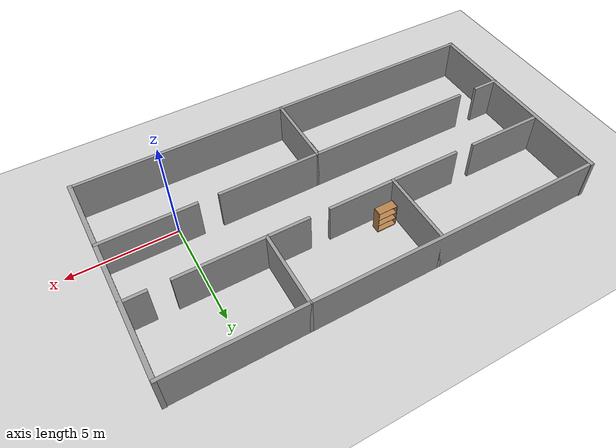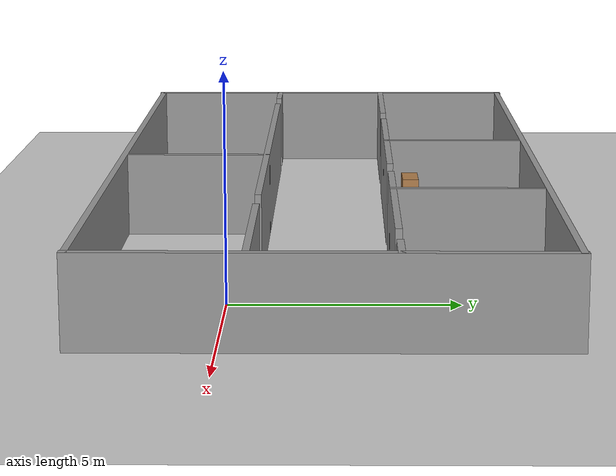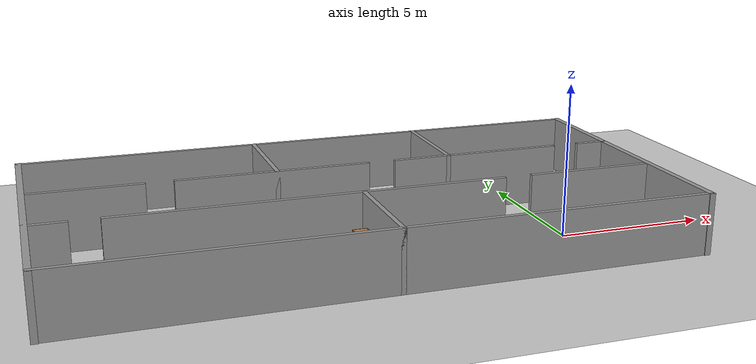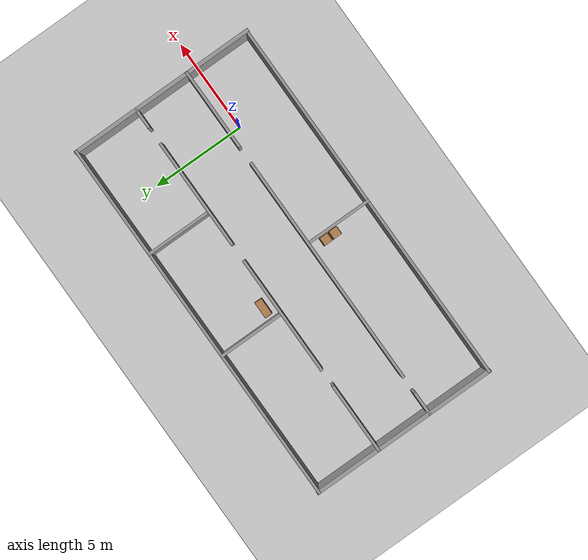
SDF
<sdf version="1.6">
 <world name="default">
  <model name="ground_plane">
   <static>1</static>
   <link name="link">
    <collision name="collision">
     <geometry><plane><normal>0 0 1</normal><size>100 100</size></plane></geometry>
     <surface>
      <contact><collide_bitmask>65535</collide_bitmask></contact>
      <friction><ode><mu>100</mu><mu2>50</mu2></ode></friction>
     </surface>
    </collision>
    <visual name="visual">
     <cast_shadows>0</cast_shadows>
     <geometry><plane><normal>0 0 1</normal><size>100 100</size></plane></geometry>
     <material>
      <script><uri>file://media/materials/scripts/gazebo.material</uri><name>Gazebo/Grey</name></script>
     </material>
    </visual>
   </link>
  </model>
  <model name="indoor1">
   <pose>-6.60599 2.09849 0 0 -0 0</pose>
   <link name="Wall_17">
    <pose>0 -1.5 0 0 -0 0</pose>
    <visual name="Wall_17_Visual_0">
     <pose>-9.43386 0 1 0 -0 0</pose>
     <geometry><box><size>1.28227 0.15 2</size></box></geometry>
     <material>
      <script><uri>file://media/materials/scripts/gazebo.material</uri><name>Gazebo/Grey</name></script>
      <ambient>1 1 1 1</ambient>
     </material>
     <meta><layer>0</layer></meta>
    </visual>
    <collision name="Wall_17_Collision_0">
     <geometry><box><size>1.28227 0.15 2</size></box></geometry>
     <pose>-9.43386 0 1 0 -0 0</pose>
    </collision>
    <visual name="Wall_17_Visual_1">
     <pose>-1.56699 0 1 0 -0 0</pose>
     <geometry><box><size>12.6515 0.15 2</size></box></geometry>
     <material>
      <script><uri>file://media/materials/scripts/gazebo.material</uri><name>Gazebo/Grey</name></script>
      <ambient>1 1 1 1</ambient>
     </material>
     <meta><layer>0</layer></meta>
    </visual>
    <collision name="Wall_17_Collision_1">
     <geometry><box><size>12.6515 0.15 2</size></box></geometry>
     <pose>-1.56699 0 1 0 -0 0</pose>
    </collision>
    <visual name="Wall_17_Visual_2">
     <pose>7.86687 0 1 0 -0 0</pose>
     <geometry><box><size>4.41625 0.15 2</size></box></geometry>
     <material>
      <script><uri>file://media/materials/scripts/gazebo.material</uri><name>Gazebo/Grey</name></script>
      <ambient>1 1 1 1</ambient>
     </material>
     <meta><layer>0</layer></meta>
    </visual>
    <collision name="Wall_17_Collision_2">
     <geometry><box><size>4.41625 0.15 2</size></box></geometry>
     <pose>7.86687 0 1 0 -0 0</pose>
    </collision>
   </link>
   <link name="Wall_19">
    <pose>0 1.5 0 0 -0 0</pose>
    <visual name="Wall_19_Visual_0">
     <pose>-8.16437 0 1 0 -0 0</pose>
     <geometry><box><size>3.82126 0.15 2</size></box></geometry>
     <material>
      <script><uri>file://media/materials/scripts/gazebo.material</uri><name>Gazebo/Grey</name></script>
      <ambient>1 1 1 1</ambient>
     </material>
     <meta><layer>0</layer></meta>
    </visual>
    <collision name="Wall_19_Collision_0">
     <geometry><box><size>3.82126 0.15 2</size></box></geometry>
     <pose>-8.16437 0 1 0 -0 0</pose>
    </collision>
    <visual name="Wall_19_Visual_1">
     <pose>-2.10232 0 1 0 -0 0</pose>
     <geometry><box><size>6.50284 0.15 2</size></box></geometry>
     <material>
      <script><uri>file://media/materials/scripts/gazebo.material</uri><name>Gazebo/Grey</name></script>
      <ambient>1 1 1 1</ambient>
     </material>
     <meta><layer>0</layer></meta>
    </visual>
    <collision name="Wall_19_Collision_1">
     <geometry><box><size>6.50284 0.15 2</size></box></geometry>
     <pose>-2.10232 0 1 0 -0 0</pose>
    </collision>
    <visual name="Wall_19_Visual_2">
     <pose>5.0405 0 1 0 -0 0</pose>
     <geometry><box><size>5.9828 0.15 2</size></box></geometry>
     <material>
      <script><uri>file://media/materials/scripts/gazebo.material</uri><name>Gazebo/Grey</name></script>
      <ambient>1 1 1 1</ambient>
     </material>
     <meta><layer>0</layer></meta>
    </visual>
    <collision name="Wall_19_Collision_2">
     <geometry><box><size>5.9828 0.15 2</size></box></geometry>
     <pose>5.0405 0 1 0 -0 0</pose>
    </collision>
    <visual name="Wall_19_Visual_3">
     <pose>9.50345 0 1 0 -0 0</pose>
     <geometry><box><size>1.1431 0.15 2</size></box></geometry>
     <material>
      <script><uri>file://media/materials/scripts/gazebo.material</uri><name>Gazebo/Grey</name></script>
      <ambient>1 1 1 1</ambient>
     </material>
     <meta><layer>0</layer></meta>
    </visual>
    <collision name="Wall_19_Collision_3">
     <geometry><box><size>1.1431 0.15 2</size></box></geometry>
     <pose>9.50345 0 1 0 -0 0</pose>
    </collision>
   </link>
   <link name="Wall_21">
    <collision name="Wall_21_Collision">
     <geometry><box><size>3.65 0.15 2</size></box></geometry>
     <pose>0 0 1 0 -0 0</pose>
    </collision>
    <visual name="Wall_21_Visual">
     <pose>0 0 1 0 -0 0</pose>
     <geometry><box><size>3.65 0.15 2</size></box></geometry>
     <material>
      <script><uri>file://media/materials/scripts/gazebo.material</uri><name>Gazebo/Grey</name></script>
      <ambient>1 1 1 1</ambient>
     </material>
     <meta><layer>0</layer></meta>
    </visual>
    <pose>-2 3.25 0 0 -0 1.5708</pose>
   </link>
   <link name="Wall_23">
    <collision name="Wall_23_Collision">
     <geometry><box><size>3.65 0.15 2</size></box></geometry>
     <pose>0 0 1 0 -0 0</pose>
    </collision>
    <visual name="Wall_23_Visual">
     <pose>0 0 1 0 -0 0</pose>
     <geometry><box><size>3.65 0.15 2</size></box></geometry>
     <material>
      <script><uri>file://media/materials/scripts/gazebo.material</uri><name>Gazebo/Grey</name></script>
      <ambient>1 1 1 1</ambient>
     </material>
     <meta><layer>0</layer></meta>
    </visual>
    <pose>4 3.25 0 0 -0 1.5708</pose>
   </link>
   <link name="Wall_25">
    <collision name="Wall_25_Collision">
     <geometry><box><size>3.65 0.15 2</size></box></geometry>
     <pose>0 0 1 0 -0 0</pose>
    </collision>
    <visual name="Wall_25_Visual">
     <pose>0 0 1 0 -0 0</pose>
     <geometry><box><size>3.65 0.15 2</size></box></geometry>
     <material>
      <script><uri>file://media/materials/scripts/gazebo.material</uri><name>Gazebo/Grey</name></script>
      <ambient>1 1 1 1</ambient>
     </material>
     <meta><layer>0</layer></meta>
    </visual>
    <pose>0 -3.25 0 0 -0 1.5708</pose>
   </link>
   <link name="Wall_5">
    <collision name="Wall_5_Collision">
     <geometry><box><size>20.15 0.15 2</size></box></geometry>
     <pose>0 0 1 0 -0 0</pose>
    </collision>
    <visual name="Wall_5_Visual">
     <pose>0 0 1 0 -0 0</pose>
     <geometry><box><size>20.15 0.15 2</size></box></geometry>
     <material>
      <script><uri>file://media/materials/scripts/gazebo.material</uri><name>Gazebo/Grey</name></script>
      <ambient>1 1 1 1</ambient>
     </material>
     <meta><layer>0</layer></meta>
    </visual>
    <pose>0 5 0 0 -0 0</pose>
   </link>
   <link name="Wall_6">
    <collision name="Wall_6_Collision">
     <geometry><box><size>10.2 0.2 2</size></box></geometry>
     <pose>0 0 1 0 -0 0</pose>
    </collision>
    <visual name="Wall_6_Visual">
     <pose>0 0 1 0 -0 0</pose>
     <geometry><box><size>10.2 0.2 2</size></box></geometry>
     <material>
      <script><uri>file://media/materials/scripts/gazebo.material</uri><name>Gazebo/Grey</name></script>
      <ambient>1 1 1 1</ambient>
     </material>
     <meta><layer>0</layer></meta>
    </visual>
    <pose>10 0 0 0 0 -1.5708</pose>
   </link>
   <link name="Wall_7">
    <collision name="Wall_7_Collision">
     <geometry><box><size>20.15 0.15 2</size></box></geometry>
     <pose>0 0 1 0 -0 0</pose>
    </collision>
    <visual name="Wall_7_Visual">
     <pose>0 0 1 0 -0 0</pose>
     <geometry><box><size>20.15 0.15 2</size></box></geometry>
     <material>
      <script><uri>file://media/materials/scripts/gazebo.material</uri><name>Gazebo/Grey</name></script>
      <ambient>1 1 1 1</ambient>
     </material>
     <meta><layer>0</layer></meta>
    </visual>
    <pose>0 -5 0 0 -0 3.14159</pose>
   </link>
   <link name="Wall_8">
    <collision name="Wall_8_Collision">
     <geometry><box><size>10.2 0.2 2</size></box></geometry>
     <pose>0 0 1 0 -0 0</pose>
    </collision>
    <visual name="Wall_8_Visual">
     <pose>0 0 1 0 -0 0</pose>
     <geometry><box><size>10.2 0.2 2</size></box></geometry>
     <material>
      <script><uri>file://media/materials/scripts/gazebo.material</uri><name>Gazebo/Grey</name></script>
      <ambient>1 1 1 1</ambient>
     </material>
     <meta><layer>0</layer></meta>
    </visual>
    <pose>-10 0 0 0 -0 1.5708</pose>
   </link>
   <static>1</static>
  </model>
  <model name="bookshelf_clone_clone">
   <static>1</static>
   <link name="link">
    <inertial><mass>1</mass></inertial>
    <collision name="back">
     <pose>0 0.005 0.6 0 -0 0</pose>
     <geometry><box><size>0.9 0.01 1.2</size></box></geometry>
    </collision>
    <visual name="visual1">
     <pose>0 0.005 0.6 0 -0 0</pose>
     <geometry><box><size>0.9 0.01 1.2</size></box></geometry>
     <material>
      <script><uri>file://media/materials/scripts/gazebo.material</uri><name>Gazebo/Wood</name></script>
     </material>
    </visual>
    <collision name="left_side">
     <pose>0.45 -0.195 0.6 0 -0 0</pose>
     <geometry><box><size>0.02 0.4 1.2</size></box></geometry>
    </collision>
    <visual name="visual2">
     <pose>0.45 -0.195 0.6 0 -0 0</pose>
     <geometry><box><size>0.02 0.4 1.2</size></box></geometry>
     <material>
      <script><uri>file://media/materials/scripts/gazebo.material</uri><name>Gazebo/Wood</name></script>
     </material>
    </visual>
    <collision name="right_side">
     <pose>-0.45 -0.195 0.6 0 -0 0</pose>
     <geometry><box><size>0.02 0.4 1.2</size></box></geometry>
    </collision>
    <visual name="visual3">
     <pose>-0.45 -0.195 0.6 0 -0 0</pose>
     <geometry><box><size>0.02 0.4 1.2</size></box></geometry>
     <material>
      <script><uri>file://media/materials/scripts/gazebo.material</uri><name>Gazebo/Wood</name></script>
     </material>
    </visual>
    <collision name="bottom">
     <pose>0 -0.195 0.03 0 -0 0</pose>
     <geometry><box><size>0.88 0.4 0.06</size></box></geometry>
    </collision>
    <visual name="visual4">
     <pose>0 -0.195 0.03 0 -0 0</pose>
     <geometry><box><size>0.88 0.4 0.06</size></box></geometry>
     <material>
      <script><uri>file://media/materials/scripts/gazebo.material</uri><name>Gazebo/Wood</name></script>
     </material>
    </visual>
    <collision name="top">
     <pose>0 -0.195 1.19 0 -0 0</pose>
     <geometry><box><size>0.88 0.4 0.02</size></box></geometry>
    </collision>
    <visual name="visual5">
     <pose>0 -0.195 1.19 0 -0 0</pose>
     <geometry><box><size>0.88 0.4 0.02</size></box></geometry>
     <material>
      <script><uri>file://media/materials/scripts/gazebo.material</uri><name>Gazebo/Wood</name></script>
     </material>
    </visual>
    <collision name="low_shelf">
     <pose>0 -0.195 0.43 0 -0 0</pose>
     <geometry><box><size>0.88 0.4 0.02</size></box></geometry>
    </collision>
    <visual name="visual6">
     <pose>0 -0.195 0.43 0 -0 0</pose>
     <geometry><box><size>0.88 0.4 0.02</size></box></geometry>
     <material>
      <script><uri>file://media/materials/scripts/gazebo.material</uri><name>Gazebo/Wood</name></script>
     </material>
    </visual>
    <collision name="high_shelf">
     <pose>0 -0.195 0.8 0 -0 0</pose>
     <geometry><box><size>0.88 0.4 0.02</size></box></geometry>
    </collision>
    <visual name="visual7">
     <pose>0 -0.195 0.8 0 -0 0</pose>
     <geometry><box><size>0.88 0.4 0.02</size></box></geometry>
     <material>
      <script><uri>file://media/materials/scripts/gazebo.material</uri><name>Gazebo/Wood</name></script>
     </material>
    </visual>
   </link>
   <pose>-7.90459 3.98313 0 0 0 -3.14159</pose>
  </model>
  <model name="cabinet_clone_clone_0">
   <static>1</static>
   <link name="cabinet_bottom_plate">
    <inertial>
     <pose>0 0 -1 0 -0 0</pose>
     <inertia><ixx>2.05</ixx><ixy>0</ixy><ixz>0</ixz><iyy>2.05</iyy><iyz>0</iyz><izz>2.05</izz></inertia>
     <mass>25</mass>
    </inertial>
    <collision name="cabinet_bottom_plate_geom">
     <pose>0 0 0.01 0 -0 0</pose>
     <geometry><box><size>0.45 0.45 0.02</size></box></geometry>
    </collision>
    <visual name="cabinet_bottom_plate_geom_visual">
     <pose>0 0 0.01 0 -0 0</pose>
     <geometry><box><size>0.45 0.45 0.02</size></box></geometry>
     <material>
      <script><uri>file://media/materials/scripts/gazebo.material</uri><name>Gazebo/Wood</name></script>
     </material>
    </visual>
    <collision name="cabinet_bottom_plate_geom_cabinet_back_plate">
     <pose>0.235 0 0.51 0 -0 0</pose>
     <geometry><box><size>0.02 0.45 1.02</size></box></geometry>
    </collision>
    <visual name="cabinet_bottom_plate_geom_cabinet_back_plate_visual">
     <pose>0.235 0 0.51 0 -0 0</pose>
     <geometry><box><size>0.02 0.45 1.02</size></box></geometry>
     <material>
      <script><uri>file://media/materials/scripts/gazebo.material</uri><name>Gazebo/Wood</name></script>
     </material>
    </visual>
    <collision name="cabinet_bottom_plate_geom_cabinet_left_plate">
     <pose>0 0.235 0.51 0 -0 0</pose>
     <geometry><box><size>0.45 0.02 1.02</size></box></geometry>
    </collision>
    <visual name="cabinet_bottom_plate_geom_cabinet_left_plate_visual">
     <pose>0 0.235 0.51 0 -0 0</pose>
     <geometry><box><size>0.45 0.02 1.02</size></box></geometry>
     <material>
      <script><uri>file://media/materials/scripts/gazebo.material</uri><name>Gazebo/Wood</name></script>
     </material>
    </visual>
    <collision name="cabinet_bottom_plate_geom_cabinet_middle_plate">
     <pose>0 0 0.51 0 -0 0</pose>
     <geometry><box><size>0.45 0.45 0.02</size></box></geometry>
    </collision>
    <visual name="cabinet_bottom_plate_geom_cabinet_middle_plate_visual">
     <pose>0 0 0.51 0 -0 0</pose>
     <geometry><box><size>0.45 0.45 0.02</size></box></geometry>
     <material>
      <script><uri>file://media/materials/scripts/gazebo.material</uri><name>Gazebo/Wood</name></script>
     </material>
    </visual>
    <collision name="cabinet_bottom_plate_geom_cabinet_right_plate">
     <pose>0 -0.235 0.51 0 -0 0</pose>
     <geometry><box><size>0.45 0.02 1.02</size></box></geometry>
    </collision>
    <visual name="cabinet_bottom_plate_geom_cabinet_right_plate_visual">
     <pose>0 -0.235 0.51 0 -0 0</pose>
     <geometry><box><size>0.45 0.02 1.02</size></box></geometry>
     <material>
      <script><uri>file://media/materials/scripts/gazebo.material</uri><name>Gazebo/Wood</name></script>
     </material>
    </visual>
    <collision name="cabinet_bottom_plate_geom_cabinet_top_plate">
     <pose>0 0 1.01 0 -0 0</pose>
     <geometry><box><size>0.45 0.45 0.02</size></box></geometry>
    </collision>
    <visual name="cabinet_bottom_plate_geom_cabinet_top_plate_visual">
     <pose>0 0 1.01 0 -0 0</pose>
     <geometry><box><size>0.45 0.45 0.02</size></box></geometry>
     <material>
      <script><uri>file://media/materials/scripts/gazebo.material</uri><name>Gazebo/Wood</name></script>
     </material>
    </visual>
   </link>
   <pose>-6.95023 -0.788579 0 0 -0 0</pose>
  </model>
  <model name="cabinet_clone_clone_0_clone_2">
   <static>1</static>
   <link name="cabinet_bottom_plate">
    <inertial>
     <pose>0 0 -1 0 -0 0</pose>
     <inertia><ixx>2.05</ixx><ixy>0</ixy><ixz>0</ixz><iyy>2.05</iyy><iyz>0</iyz><izz>2.05</izz></inertia>
     <mass>25</mass>
    </inertial>
    <collision name="cabinet_bottom_plate_geom">
     <pose>0 0 0.01 0 -0 0</pose>
     <geometry><box><size>0.45 0.45 0.02</size></box></geometry>
    </collision>
    <visual name="cabinet_bottom_plate_geom_visual">
     <pose>0 0 0.01 0 -0 0</pose>
     <geometry><box><size>0.45 0.45 0.02</size></box></geometry>
     <material>
      <script><uri>file://media/materials/scripts/gazebo.material</uri><name>Gazebo/Wood</name></script>
     </material>
    </visual>
    <collision name="cabinet_bottom_plate_geom_cabinet_back_plate">
     <pose>0.235 0 0.51 0 -0 0</pose>
     <geometry><box><size>0.02 0.45 1.02</size></box></geometry>
    </collision>
    <visual name="cabinet_bottom_plate_geom_cabinet_back_plate_visual">
     <pose>0.235 0 0.51 0 -0 0</pose>
     <geometry><box><size>0.02 0.45 1.02</size></box></geometry>
     <material>
      <script><uri>file://media/materials/scripts/gazebo.material</uri><name>Gazebo/Wood</name></script>
     </material>
    </visual>
    <collision name="cabinet_bottom_plate_geom_cabinet_left_plate">
     <pose>0 0.235 0.51 0 -0 0</pose>
     <geometry><box><size>0.45 0.02 1.02</size></box></geometry>
    </collision>
    <visual name="cabinet_bottom_plate_geom_cabinet_left_plate_visual">
     <pose>0 0.235 0.51 0 -0 0</pose>
     <geometry><box><size>0.45 0.02 1.02</size></box></geometry>
     <material>
      <script><uri>file://media/materials/scripts/gazebo.material</uri><name>Gazebo/Wood</name></script>
     </material>
    </visual>
    <collision name="cabinet_bottom_plate_geom_cabinet_middle_plate">
     <pose>0 0 0.51 0 -0 0</pose>
     <geometry><box><size>0.45 0.45 0.02</size></box></geometry>
    </collision>
    <visual name="cabinet_bottom_plate_geom_cabinet_middle_plate_visual">
     <pose>0 0 0.51 0 -0 0</pose>
     <geometry><box><size>0.45 0.45 0.02</size></box></geometry>
     <material>
      <script><uri>file://media/materials/scripts/gazebo.material</uri><name>Gazebo/Wood</name></script>
     </material>
    </visual>
    <collision name="cabinet_bottom_plate_geom_cabinet_right_plate">
     <pose>0 -0.235 0.51 0 -0 0</pose>
     <geometry><box><size>0.45 0.02 1.02</size></box></geometry>
    </collision>
    <visual name="cabinet_bottom_plate_geom_cabinet_right_plate_visual">
     <pose>0 -0.235 0.51 0 -0 0</pose>
     <geometry><box><size>0.45 0.02 1.02</size></box></geometry>
     <material>
      <script><uri>file://media/materials/scripts/gazebo.material</uri><name>Gazebo/Wood</name></script>
     </material>
    </visual>
    <collision name="cabinet_bottom_plate_geom_cabinet_top_plate">
     <pose>0 0 1.01 0 -0 0</pose>
     <geometry><box><size>0.45 0.45 0.02</size></box></geometry>
    </collision>
    <visual name="cabinet_bottom_plate_geom_cabinet_top_plate_visual">
     <pose>0 0 1.01 0 -0 0</pose>
     <geometry><box><size>0.45 0.45 0.02</size></box></geometry>
     <material>
      <script><uri>file://media/materials/scripts/gazebo.material</uri><name>Gazebo/Wood</name></script>
     </material>
    </visual>
   </link>
   <pose>-6.95674 -0.241005 0 0 -0 0</pose>
  </model>
 </world>
</sdf>
